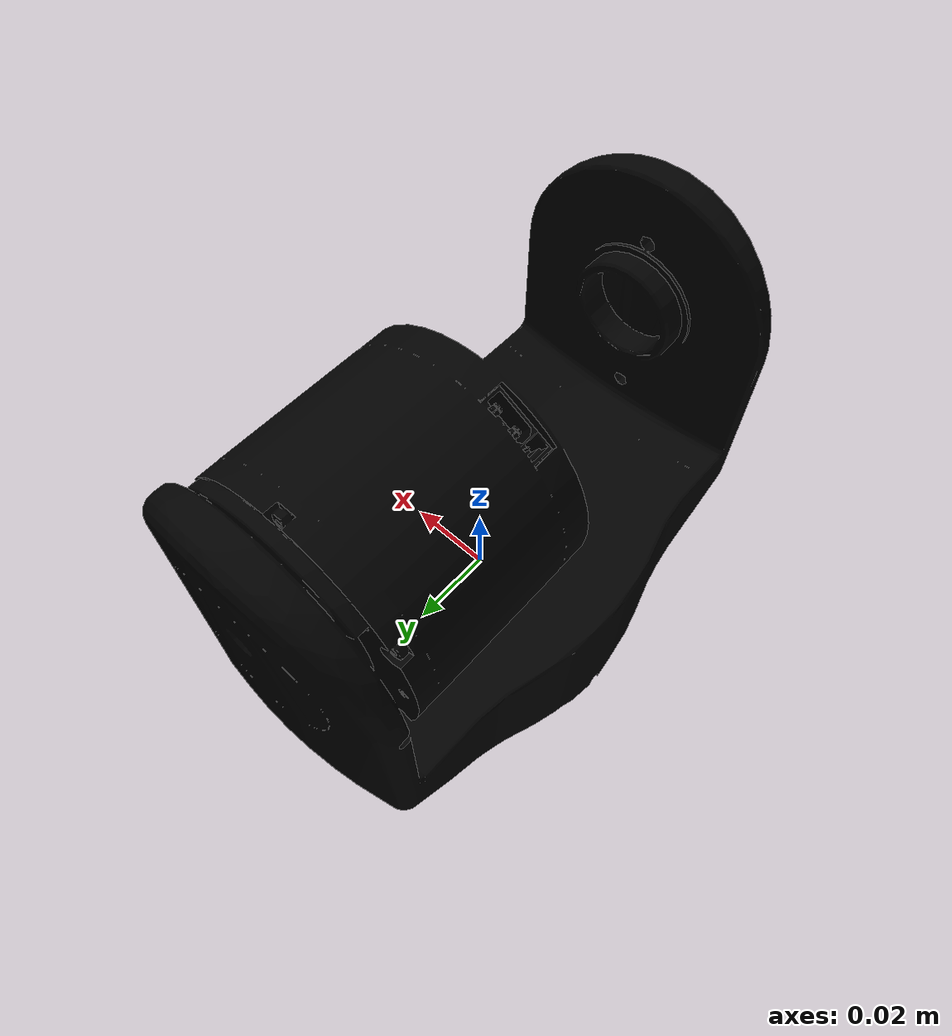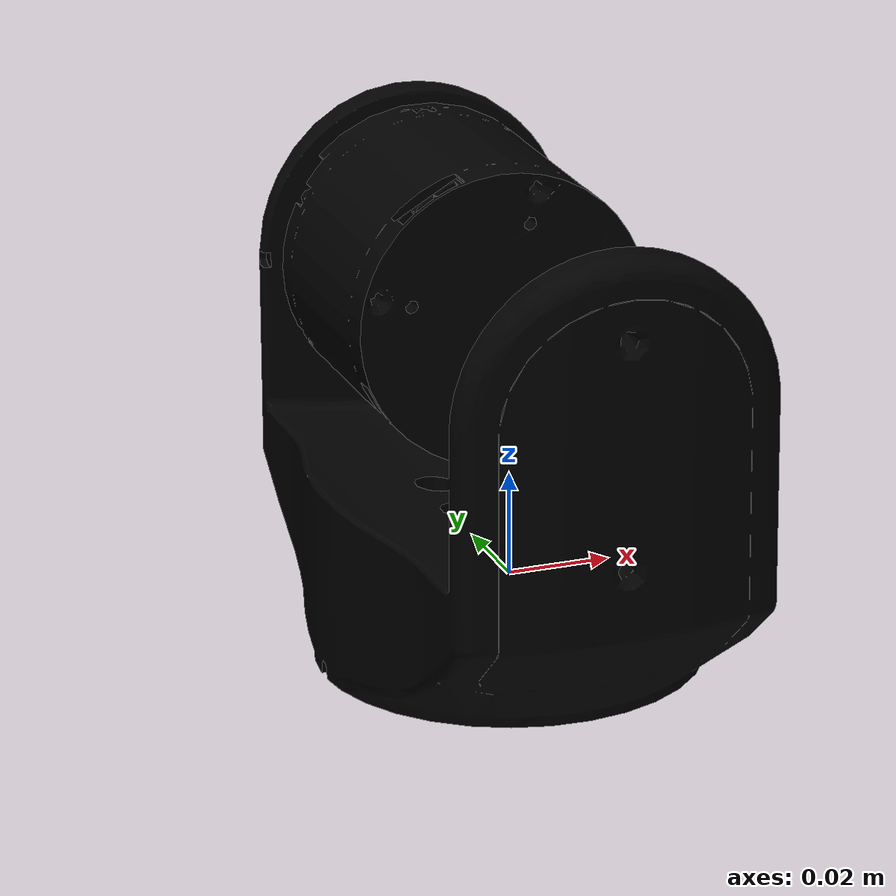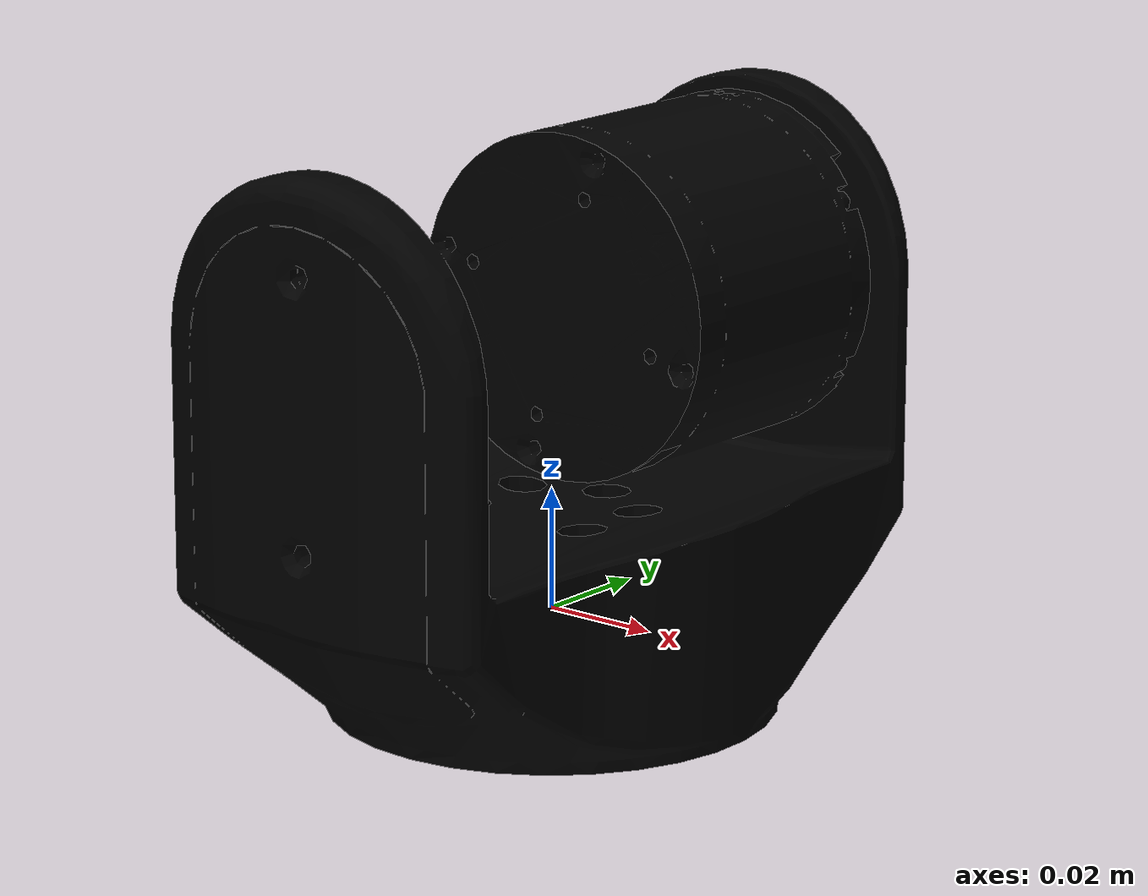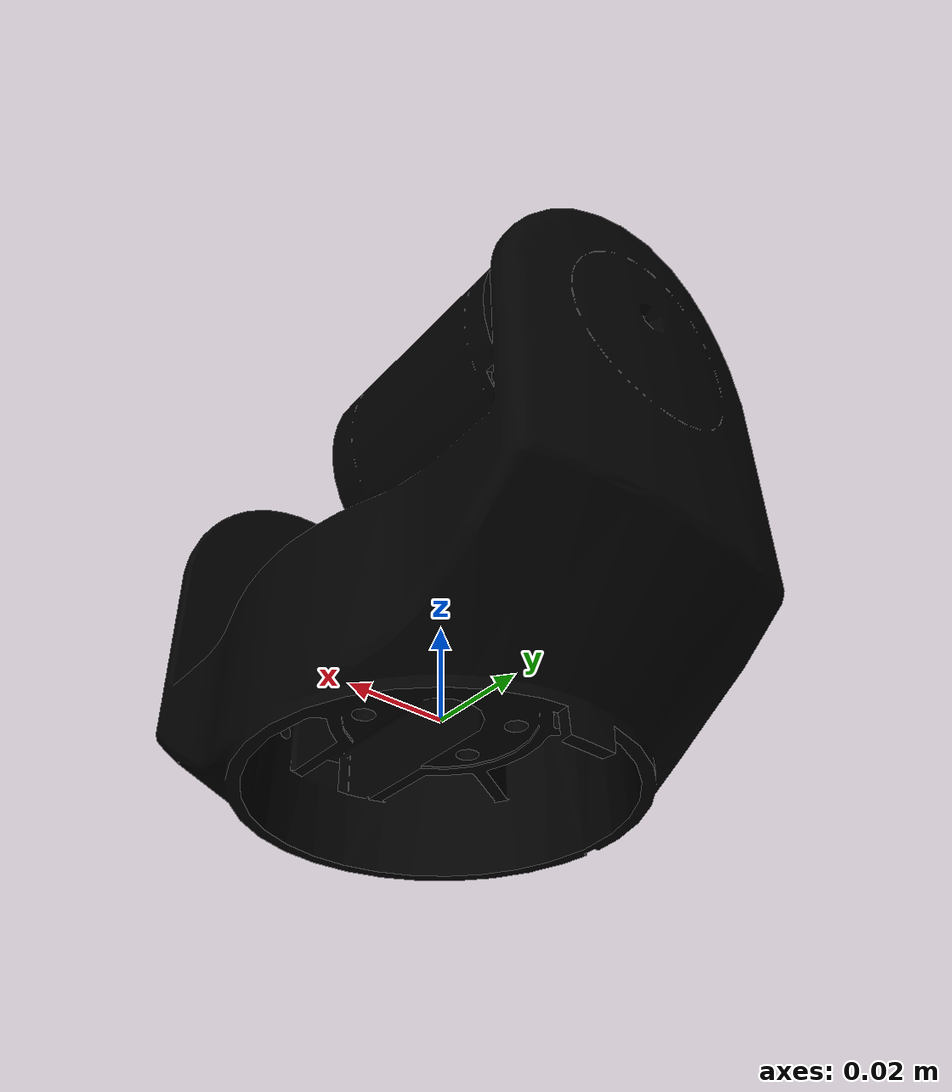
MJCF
<mujoco model="head_l2">
  <default>
    <default class="visual">
      <geom group="2" type="mesh" contype="0" conaffinity="0"/>
    </default>
    <default class="collision">
      <geom group="3" type="mesh"/>
    </default>
  </default>
  <asset>
    <material name="material_0" specular="0.4000000000000001" shininess="0.001" rgba="0.00000000 0.00000000 0.00000000 1.0"/>
    <mesh file="head_l2.obj"/>
  </asset>
  <worldbody>
    <body name="head_l2">
      <geom material="material_0" mesh="head_l2" class="visual"/>
    </body>
  </worldbody>
</mujoco>
